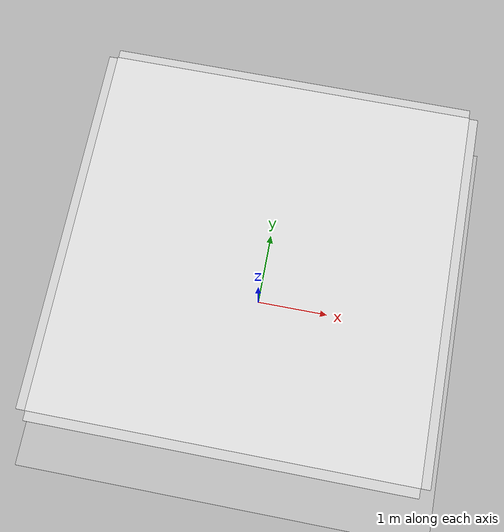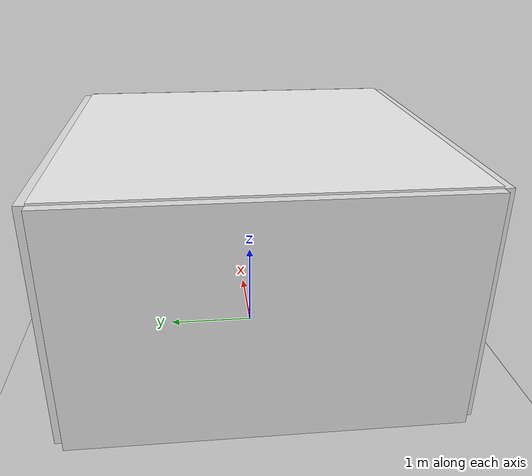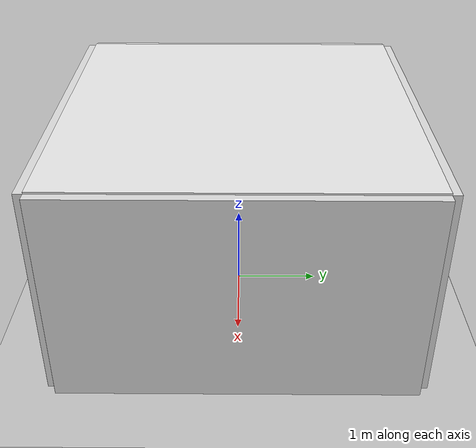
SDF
<?xml version="1.0" ?>
<sdf version="1.6">
  <world name="tracking_room">

    <!-- Physics settings -->
    <physics type="ode">
      <real_time_update_rate>1000</real_time_update_rate>
      <max_step_size>0.001</max_step_size>
    </physics>

    <!-- Lighting -->
    <include>
      <uri>model://sun</uri>
    </include>

    <!-- Ground plane -->
    <include>
      <uri>model://ground_plane</uri>
    </include>

    <!-- Room walls (4m x 4m x 2.5m room) -->
    <!-- Floor -->
    <model name="floor">
      <static>true</static>
      <link name="link">
        <collision name="collision">
          <geometry>
            <box><size>4.0 4.0 0.02</size></box>
          </geometry>
        </collision>
        <visual name="visual">
          <geometry>
            <box><size>4.0 4.0 0.02</size></box>
          </geometry>
          <material>
            <ambient>0.8 0.8 0.8 1</ambient>
            <diffuse>0.8 0.8 0.8 1</diffuse>
          </material>
        </visual>
      </link>
      <pose>0 0 -0.01 0 0 0</pose>
    </model>

    <!-- Wall 1 (North) -->
    <model name="wall_north">
      <static>true</static>
      <link name="link">
        <collision name="collision">
          <geometry>
            <box><size>4.0 0.1 2.5</size></box>
          </geometry>
        </collision>
        <visual name="visual">
          <geometry>
            <box><size>4.0 0.1 2.5</size></box>
          </geometry>
          <material>
            <ambient>0.7 0.7 0.7 1</ambient>
            <diffuse>0.9 0.9 0.9 1</diffuse>
          </material>
        </visual>
      </link>
      <pose>0 2.05 1.25 0 0 0</pose>
    </model>

    <!-- Wall 2 (South) -->
    <model name="wall_south">
      <static>true</static>
      <link name="link">
        <collision name="collision">
          <geometry>
            <box><size>4.0 0.1 2.5</size></box>
          </geometry>
        </collision>
        <visual name="visual">
          <geometry>
            <box><size>4.0 0.1 2.5</size></box>
          </geometry>
          <material>
            <ambient>0.7 0.7 0.7 1</ambient>
            <diffuse>0.9 0.9 0.9 1</diffuse>
          </material>
        </visual>
      </link>
      <pose>0 -2.05 1.25 0 0 0</pose>
    </model>

    <!-- Wall 3 (East) -->
    <model name="wall_east">
      <static>true</static>
      <link name="link">
        <collision name="collision">
          <geometry>
            <box><size>0.1 4.0 2.5</size></box>
          </geometry>
        </collision>
        <visual name="visual">
          <geometry>
            <box><size>0.1 4.0 2.5</size></box>
          </geometry>
          <material>
            <ambient>0.7 0.7 0.7 1</ambient>
            <diffuse>0.9 0.9 0.9 1</diffuse>
          </material>
        </visual>
      </link>
      <pose>2.05 0 1.25 0 0 0</pose>
    </model>

    <!-- Wall 4 (West) -->
    <model name="wall_west">
      <static>true</static>
      <link name="link">
        <collision name="collision">
          <geometry>
            <box><size>0.1 4.0 2.5</size></box>
          </geometry>
        </collision>
        <visual name="visual">
          <geometry>
            <box><size>0.1 4.0 2.5</size></box>
          </geometry>
          <material>
            <ambient>0.7 0.7 0.7 1</ambient>
            <diffuse>0.9 0.9 0.9 1</diffuse>
          </material>
        </visual>
      </link>
      <pose>-2.05 0 1.25 0 0 0</pose>
    </model>

    <!-- Ceiling -->
    <model name="ceiling">
      <static>true</static>
      <link name="link">
        <collision name="collision">
          <geometry>
            <box><size>4.0 4.0 0.02</size></box>
          </geometry>
        </collision>
        <visual name="visual">
          <geometry>
            <box><size>4.0 4.0 0.02</size></box>
          </geometry>
          <material>
            <ambient>0.95 0.95 0.95 1</ambient>
            <diffuse>0.95 0.95 0.95 1</diffuse>
          </material>
        </visual>
      </link>
      <pose>0 0 2.51 0 0 0</pose>
    </model>

    <!-- Obstacles for navigation testing -->
    <!-- Obstacle 1 -->
    <model name="obstacle_1">
      <static>true</static>
      <link name="link">
        <collision name="collision">
          <geometry>
            <box><size>0.5 0.5 0.8</size></box>
          </geometry>
        </collision>
        <visual name="visual">
          <geometry>
            <box><size>0.5 0.5 0.8</size></box>
          </geometry>
          <material>
            <ambient>0.8 0.2 0.2 1</ambient>
            <diffuse>0.8 0.2 0.2 1</diffuse>
          </material>
        </visual>
      </link>
      <pose>1.0 0.5 0.4 0 0 0</pose>
    </model>

    <!-- Obstacle 2 -->
    <model name="obstacle_2">
      <static>true</static>
      <link name="link">
        <collision name="collision">
          <geometry>
            <cylinder>
              <radius>0.3</radius>
              <length>1.0</length>
            </cylinder>
          </geometry>
        </collision>
        <visual name="visual">
          <geometry>
            <cylinder>
              <radius>0.3</radius>
              <length>1.0</length>
            </cylinder>
          </geometry>
          <material>
            <ambient>0.2 0.8 0.2 1</ambient>
            <diffuse>0.2 0.8 0.2 1</diffuse>
          </material>
        </visual>
      </link>
      <pose>-0.8 -0.7 0.5 0 0 0</pose>
    </model>

    <!-- Obstacle 3 -->
    <model name="obstacle_3">
      <static>true</static>
      <link name="link">
        <collision name="collision">
          <geometry>
            <box><size>0.8 0.3 0.6</size></box>
          </geometry>
        </collision>
        <visual name="visual">
          <geometry>
            <box><size>0.8 0.3 0.6</size></box>
          </geometry>
          <material>
            <ambient>0.2 0.2 0.8 1</ambient>
            <diffuse>0.2 0.2 0.8 1</diffuse>
          </material>
        </visual>
      </link>
      <pose>0.0 1.2 0.3 0 0 0</pose>
    </model>

    <!-- Camera Mount 1 (NE corner, looking at center at 45°) -->
    <model name="camera_mount_1">
      <static>true</static>
      <link name="link">
        <!-- Camera body -->
        <visual name="camera_body">
          <pose>0 0 0 0 0 0</pose>
          <geometry>
            <box><size>0.08 0.08 0.06</size></box>
          </geometry>
          <material>
            <ambient>0.1 0.1 0.1 1</ambient>
            <diffuse>0.2 0.2 0.2 1</diffuse>
          </material>
        </visual>
        <!-- Camera lens -->
        <visual name="camera_lens">
          <pose>0 0 -0.04 0 0 0</pose>
          <geometry>
            <cylinder>
              <radius>0.02</radius>
              <length>0.02</length>
            </cylinder>
          </geometry>
          <material>
            <ambient>0.0 0.0 0.0 1</ambient>
            <diffuse>0.1 0.1 0.1 1</diffuse>
          </material>
        </visual>
        <!-- Depth camera sensor -->
        <sensor name="depth_camera_1" type="depth">
          <pose>0 0 0 0 0 0</pose>
          <update_rate>30</update_rate>
          <camera>
            <horizontal_fov>1.047</horizontal_fov>
            <image>
              <width>640</width>
              <height>480</height>
              <format>R8G8B8</format>
            </image>
            <clip>
              <near>0.1</near>
              <far>10.0</far>
            </clip>
          </camera>
          <plugin name="depth_camera_plugin_1" filename="libgazebo_ros_camera.so">
            <ros>
              <namespace>/cameras</namespace>
              <remapping>image_raw:=camera_1/image_raw</remapping>
              <remapping>depth/image_raw:=camera_1/depth/image_raw</remapping>
              <remapping>camera_info:=camera_1/camera_info</remapping>
              <remapping>points:=camera_1/points</remapping>
            </ros>
            <camera_name>camera_1</camera_name>
            <frame_name>camera_1_link</frame_name>
            <min_depth>0.1</min_depth>
            <max_depth>10.0</max_depth>
          </plugin>
        </sensor>
      </link>
      <!-- Position: NE corner, 2.4m high, tilted 45° down looking at center -->
      <!-- Rotation: pitch=-45° to look down, yaw=225° (pointing toward center) -->
      <pose>1.8 1.8 2.4 0 0.785 -2.356</pose>
    </model>

    <!-- Camera Mount 2 (NW corner) -->
    <model name="camera_mount_2">
      <static>true</static>
      <link name="link">
        <visual name="camera_body">
          <pose>0 0 0 0 0 0</pose>
          <geometry>
            <box><size>0.08 0.08 0.06</size></box>
          </geometry>
          <material>
            <ambient>0.1 0.1 0.1 1</ambient>
            <diffuse>0.2 0.2 0.2 1</diffuse>
          </material>
        </visual>
        <visual name="camera_lens">
          <pose>0 0 -0.04 0 0 0</pose>
          <geometry>
            <cylinder>
              <radius>0.02</radius>
              <length>0.02</length>
            </cylinder>
          </geometry>
          <material>
            <ambient>0.0 0.0 0.0 1</ambient>
            <diffuse>0.1 0.1 0.1 1</diffuse>
          </material>
        </visual>
        <sensor name="depth_camera_2" type="depth">
          <pose>0 0 0 0 0 0</pose>
          <update_rate>30</update_rate>
          <camera>
            <horizontal_fov>1.047</horizontal_fov>
            <image>
              <width>640</width>
              <height>480</height>
              <format>R8G8B8</format>
            </image>
            <clip>
              <near>0.1</near>
              <far>10.0</far>
            </clip>
          </camera>
          <plugin name="depth_camera_plugin_2" filename="libgazebo_ros_camera.so">
            <ros>
              <namespace>/cameras</namespace>
              <remapping>image_raw:=camera_2/image_raw</remapping>
              <remapping>depth/image_raw:=camera_2/depth/image_raw</remapping>
              <remapping>camera_info:=camera_2/camera_info</remapping>
              <remapping>points:=camera_2/points</remapping>
            </ros>
            <camera_name>camera_2</camera_name>
            <frame_name>camera_2_link</frame_name>
            <min_depth>0.1</min_depth>
            <max_depth>10.0</max_depth>
          </plugin>
        </sensor>
      </link>
      <!-- Position: NW corner, yaw=-45° (pointing toward center) -->
      <pose>-1.8 1.8 2.4 0 0.785 -0.785</pose>
    </model>

    <!-- Camera Mount 3 (SW corner) -->
    <model name="camera_mount_3">
      <static>true</static>
      <link name="link">
        <visual name="camera_body">
          <pose>0 0 0 0 0 0</pose>
          <geometry>
            <box><size>0.08 0.08 0.06</size></box>
          </geometry>
          <material>
            <ambient>0.1 0.1 0.1 1</ambient>
            <diffuse>0.2 0.2 0.2 1</diffuse>
          </material>
        </visual>
        <visual name="camera_lens">
          <pose>0 0 -0.04 0 0 0</pose>
          <geometry>
            <cylinder>
              <radius>0.02</radius>
              <length>0.02</length>
            </cylinder>
          </geometry>
          <material>
            <ambient>0.0 0.0 0.0 1</ambient>
            <diffuse>0.1 0.1 0.1 1</diffuse>
          </material>
        </visual>
        <sensor name="depth_camera_3" type="depth">
          <pose>0 0 0 0 0 0</pose>
          <update_rate>30</update_rate>
          <camera>
            <horizontal_fov>1.047</horizontal_fov>
            <image>
              <width>640</width>
              <height>480</height>
              <format>R8G8B8</format>
            </image>
            <clip>
              <near>0.1</near>
              <far>10.0</far>
            </clip>
          </camera>
          <plugin name="depth_camera_plugin_3" filename="libgazebo_ros_camera.so">
            <ros>
              <namespace>/cameras</namespace>
              <remapping>image_raw:=camera_3/image_raw</remapping>
              <remapping>depth/image_raw:=camera_3/depth/image_raw</remapping>
              <remapping>camera_info:=camera_3/camera_info</remapping>
              <remapping>points:=camera_3/points</remapping>
            </ros>
            <camera_name>camera_3</camera_name>
            <frame_name>camera_3_link</frame_name>
            <min_depth>0.1</min_depth>
            <max_depth>10.0</max_depth>
          </plugin>
        </sensor>
      </link>
      <!-- Position: SW corner, yaw=45° (pointing toward center) -->
      <pose>-1.8 -1.8 2.4 0 0.785 0.785</pose>
    </model>

    <!-- Camera Mount 4 (SE corner) -->
    <model name="camera_mount_4">
      <static>true</static>
      <link name="link">
        <visual name="camera_body">
          <pose>0 0 0 0 0 0</pose>
          <geometry>
            <box><size>0.08 0.08 0.06</size></box>
          </geometry>
          <material>
            <ambient>0.1 0.1 0.1 1</ambient>
            <diffuse>0.2 0.2 0.2 1</diffuse>
          </material>
        </visual>
        <visual name="camera_lens">
          <pose>0 0 -0.04 0 0 0</pose>
          <geometry>
            <cylinder>
              <radius>0.02</radius>
              <length>0.02</length>
            </cylinder>
          </geometry>
          <material>
            <ambient>0.0 0.0 0.0 1</ambient>
            <diffuse>0.1 0.1 0.1 1</diffuse>
          </material>
        </visual>
        <sensor name="depth_camera_4" type="depth">
          <pose>0 0 0 0 0 0</pose>
          <update_rate>30</update_rate>
          <camera>
            <horizontal_fov>1.047</horizontal_fov>
            <image>
              <width>640</width>
              <height>480</height>
              <format>R8G8B8</format>
            </image>
            <clip>
              <near>0.1</near>
              <far>10.0</far>
            </clip>
          </camera>
          <plugin name="depth_camera_plugin_4" filename="libgazebo_ros_camera.so">
            <ros>
              <namespace>/cameras</namespace>
              <remapping>image_raw:=camera_4/image_raw</remapping>
              <remapping>depth/image_raw:=camera_4/depth/image_raw</remapping>
              <remapping>camera_info:=camera_4/camera_info</remapping>
              <remapping>points:=camera_4/points</remapping>
            </ros>
            <camera_name>camera_4</camera_name>
            <frame_name>camera_4_link</frame_name>
            <min_depth>0.1</min_depth>
            <max_depth>10.0</max_depth>
          </plugin>
        </sensor>
      </link>
      <!-- Position: SE corner, yaw=135° (pointing toward center) -->
      <pose>1.8 -1.8 2.4 0 0.785 2.356</pose>
    </model>

    <!-- Additional indoor lighting -->
    <light name="ceiling_light_1" type="point">
      <pose>0 0 2.3 0 0 0</pose>
      <diffuse>0.8 0.8 0.8 1</diffuse>
      <specular>0.1 0.1 0.1 1</specular>
      <attenuation>
        <range>10</range>
        <constant>0.5</constant>
        <linear>0.01</linear>
        <quadratic>0.001</quadratic>
      </attenuation>
      <cast_shadows>false</cast_shadows>
    </light>

    <light name="ceiling_light_2" type="point">
      <pose>1.0 1.0 2.3 0 0 0</pose>
      <diffuse>0.6 0.6 0.6 1</diffuse>
      <specular>0.1 0.1 0.1 1</specular>
      <attenuation>
        <range>10</range>
        <constant>0.5</constant>
        <linear>0.01</linear>
        <quadratic>0.001</quadratic>
      </attenuation>
      <cast_shadows>false</cast_shadows>
    </light>

    <light name="ceiling_light_3" type="point">
      <pose>-1.0 -1.0 2.3 0 0 0</pose>
      <diffuse>0.6 0.6 0.6 1</diffuse>
      <specular>0.1 0.1 0.1 1</specular>
      <attenuation>
        <range>10</range>
        <constant>0.5</constant>
        <linear>0.01</linear>
        <quadratic>0.001</quadratic>
      </attenuation>
      <cast_shadows>false</cast_shadows>
    </light>

  </world>
</sdf>
